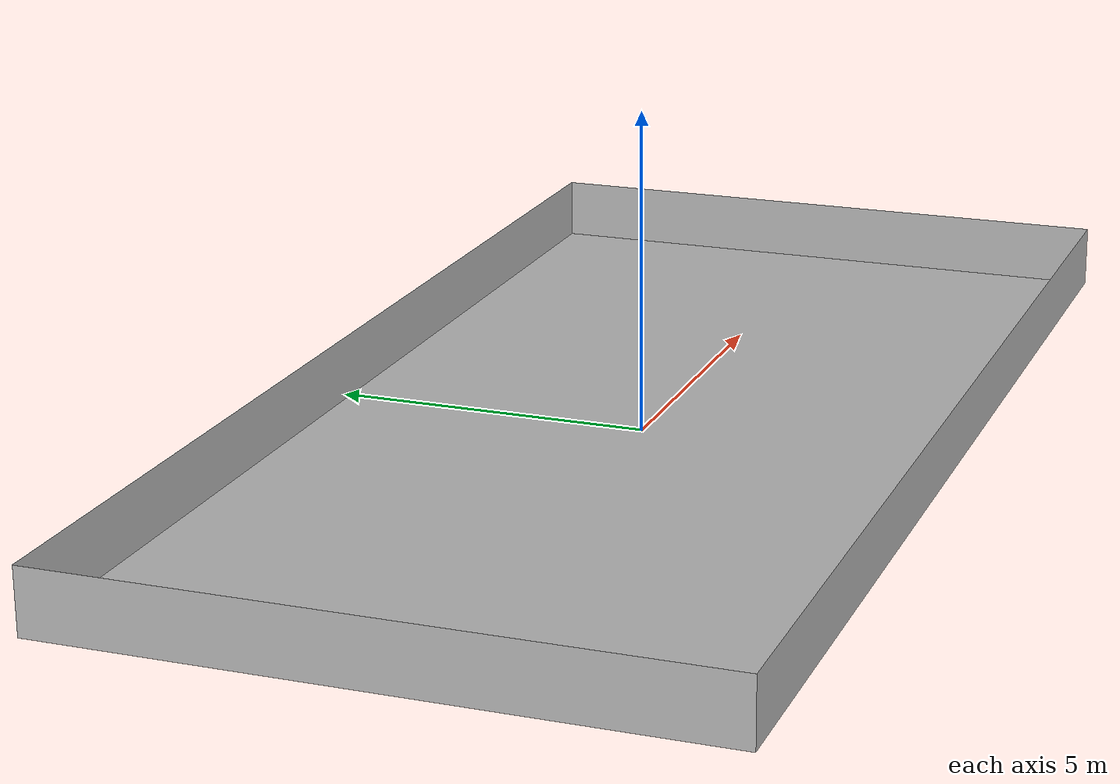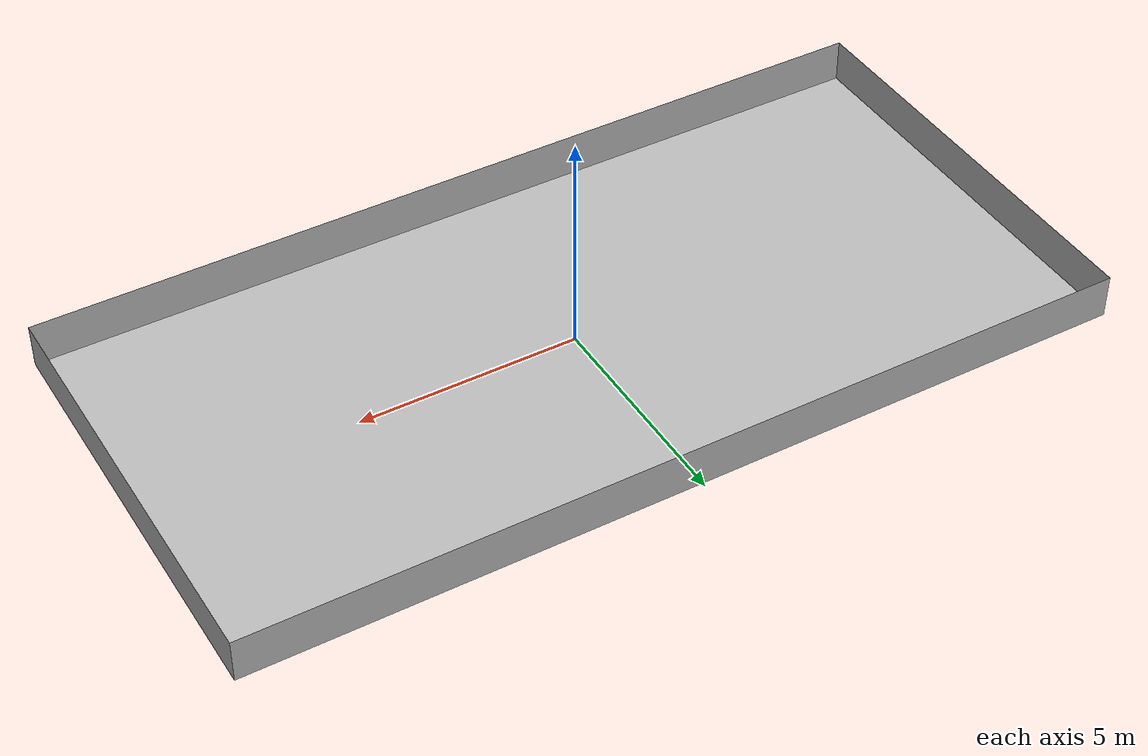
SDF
<?xml version='1.0' encoding='utf-8'?>
<sdf version="1.4">
<model name="template_model">
<link name="track">
<collision name="collision">
<pose>0 0 0 0 0 0</pose>
<geometry>
<mesh>
<uri>model://meshes/arctic_open_ccw/arctic_open_ccw_collision.dae</uri>
</mesh>
</geometry>
</collision>
<visual name="visual">
<pose>0 0 0 0 0 0</pose>
<geometry>
<mesh>
<uri>model://meshes/arctic_open_ccw/arctic_open_ccw.dae</uri>
</mesh>
</geometry>
</visual>
</link>
<static>1</static>
</model>
</sdf>
